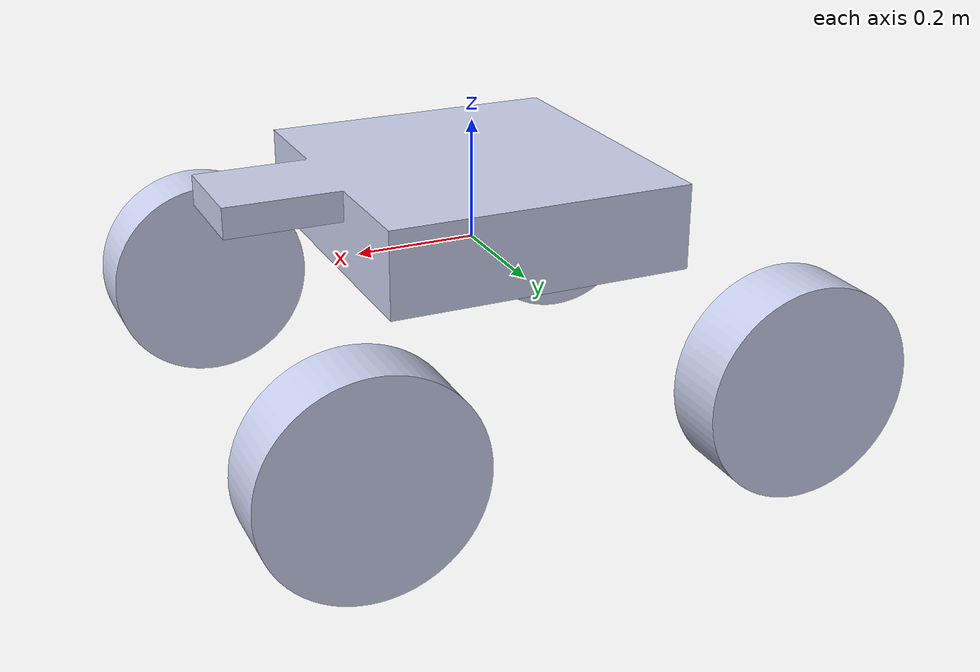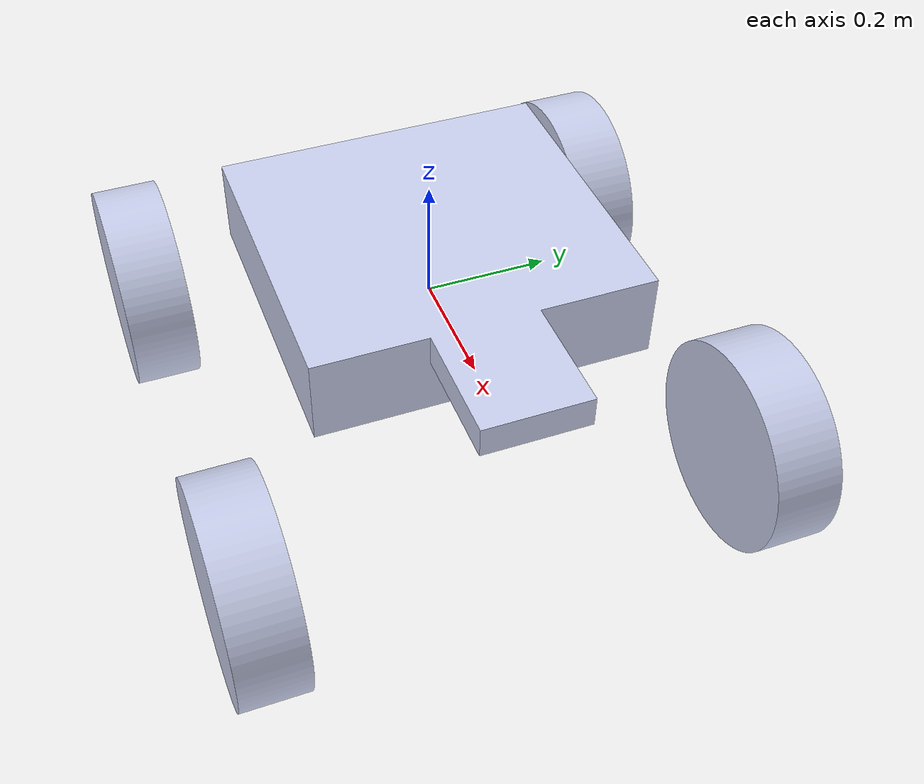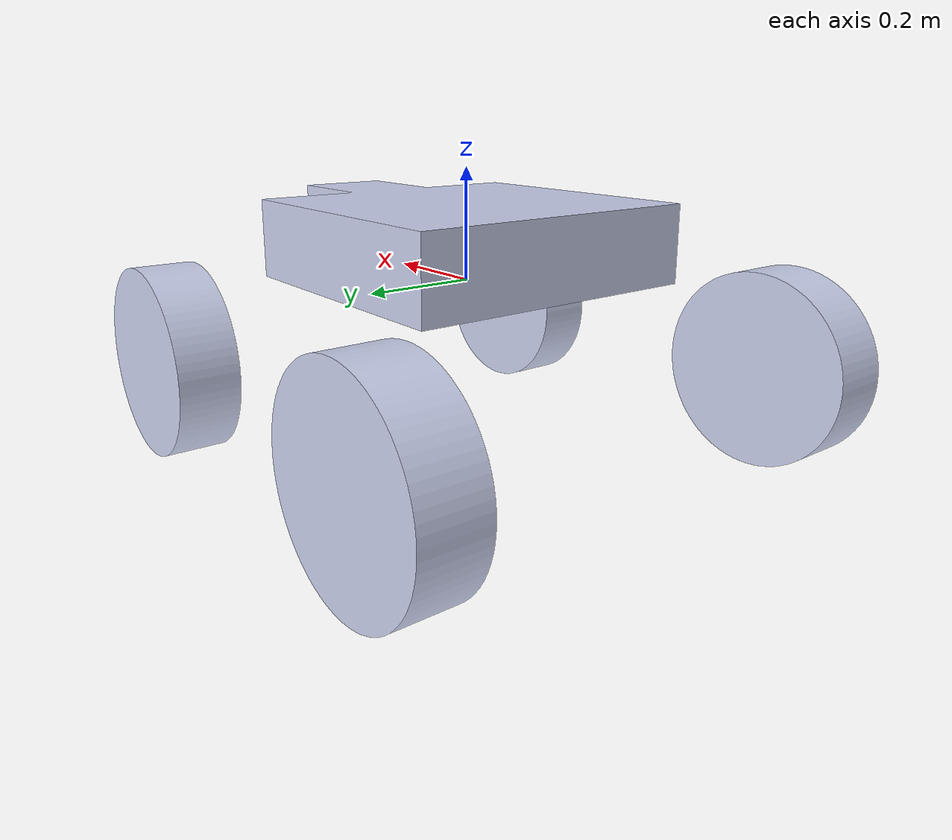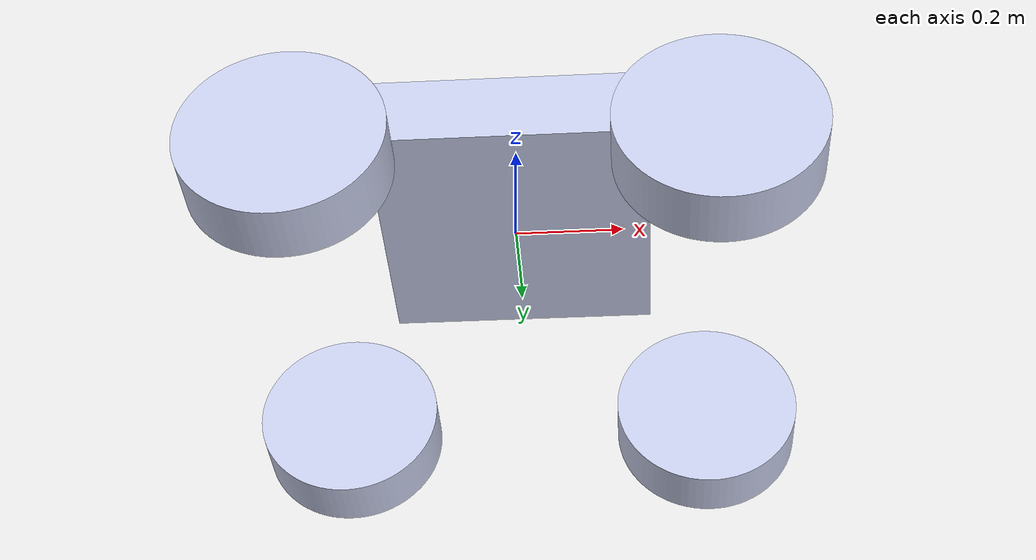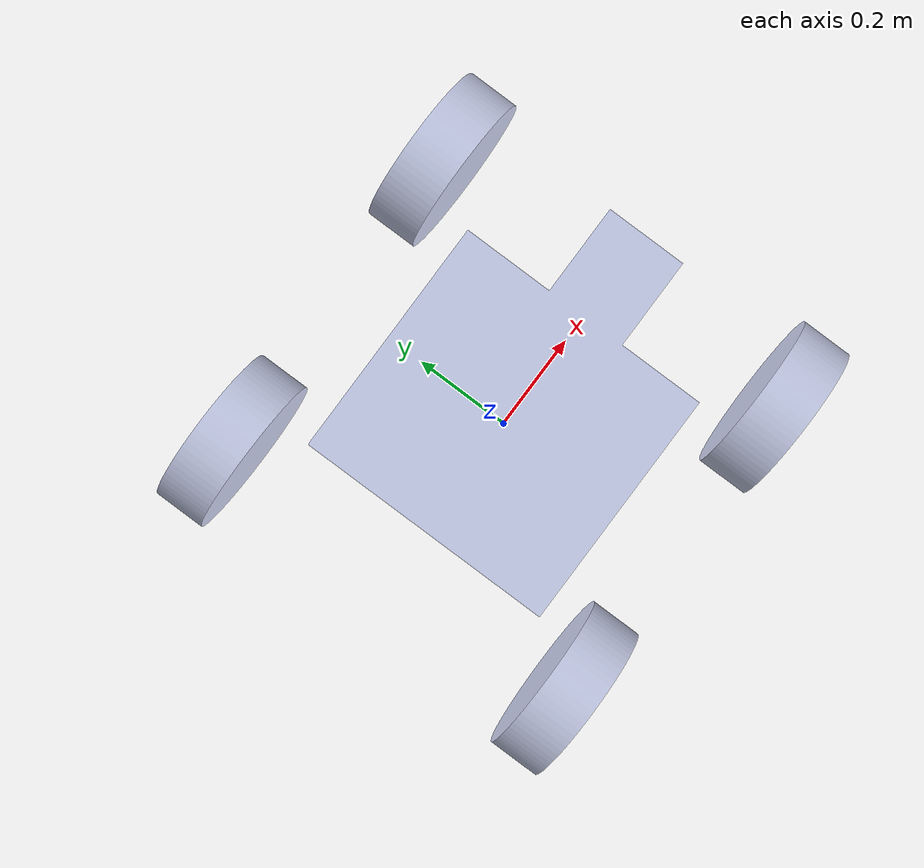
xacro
<?xml version="1.0" encoding="utf-8"?>
<robot
  name="rover_21_description" xmlns:xacro="http://www.ros.org/wiki/xacro">

  <xacro:property name="cameraSize" value="0.05"/>
  <xacro:property name="cameraMass" value="0.1"/>

  <link
    name="base_link">
    <inertial>
      <origin
        xyz="-0.0597176388871317 -2.21514952908342E-09 0.0432014783103323"
        rpy="0 0 0" />
      <mass
        value="7.6451763291456" />
      <inertia
        ixx="0.168439329083486"
        ixy="-1.08629887891622E-05"
        ixz="0.0407415251600241"
        iyy="0.481545696094267"
        iyz="5.75369711790317E-08"
        izz="0.541121238422161" />
    </inertial>
    <visual>
      <origin
        xyz="0 0 0"
        rpy="0 0 -1.57" />
      <geometry>
        <mesh
          filename="package://rover_21_description/meshes/base_link_new.stl"  scale="0.1 0.1 0.1"/>
      </geometry>
      <material
        name="">
        <color
          rgba="0.792156862745098 0.819607843137255 0.933333333333333 1" />
      </material>
    </visual>
    <collision>
      <origin
        xyz="0 0 0"
        rpy="0 0 -1.57" />
      <geometry>
        <mesh
          filename="package://rover_21_description/meshes/base_link_new.stl"  scale="0.1 0.1 0.1"/>
      </geometry>
    </collision>
  </link>
  <link
    name="left_front_link">
    <inertial>
      <origin
        xyz="-0.0755097276903981 0.000138247434987249 -4.79303458726932E-05"
        rpy="0 0 0" />
      <mass
        value="1.15731252096219" />
      <inertia
        ixx="0.0178302511822237"
        ixy="-2.09274363582099E-06"
        ixz="1.4204407926078E-06"
        iyy="0.00968270185063617"
        iyz="1.80036299754407E-06"
        izz="0.00969344166305502" />
    </inertial>
    <visual>
      <origin
        xyz="0 0 0"
        rpy="0 0 0" />
      <geometry>
        <mesh
          filename="package://rover_21_description/meshes/left_front.stl"  scale="0.1 0.1 0.1"/>
      </geometry>
      <material
        name="">
        <color
          rgba="0.792156862745098 0.819607843137255 0.933333333333333 1" />
      </material>
    </visual>
    <collision>
      <origin
        xyz="0 0 0"
        rpy="0 0 0" />
      <geometry>
        <mesh
          filename="package://rover_21_description/meshes/left_front.stl"  scale="0.1 0.1 0.1"/>
      </geometry>
    </collision>
  </link>
  <joint
    name="left_front_joint"
    type="continuous">
    <origin
      xyz="0.353294657130572 0.3625 -0.154224967578181"
      rpy="-2.0786047357804 0 -1.5707963267949" />
    <parent
      link="base_link" />
    <child
      link="left_front_link" />
    <axis
      xyz="-1 0 0" />
  </joint>
  <link
    name="right_front_link">
    <inertial>
      <origin
        xyz="-2.84518155616587E-05 0.00014352757758429 -0.0754466264782706"
        rpy="0 0 0" />
      <mass
        value="1.15731252096219" />
      <inertia
        ixx="0.00969372906416445"
        ixy="2.68465121779082E-07"
        ixz="-1.11897159373537E-06"
        iyy="0.00968241444952688"
        iyz="2.26828802029305E-06"
        izz="0.0178302511822238" />
    </inertial>
    <visual>
      <origin
        xyz="0 0 0"
        rpy="0 0 0" />
      <geometry>
        <mesh
          filename="package://rover_21_description/meshes/right_front.stl"  scale="0.1 0.1 0.1"/>
      </geometry>
      <material
        name="">
        <color
          rgba="0.792156862745098 0.819607843137255 0.933333333333333 1" />
      </material>
    </visual>
    <collision>
      <origin
        xyz="0 0 0"
        rpy="0 0 0" />
      <geometry>
        <mesh
          filename="package://rover_21_description/meshes/right_front.stl"  scale="0.1 0.1 0.1"/>
      </geometry>
    </collision>
  </link>
  <joint
    name="right_front_joint"
    type="continuous">
    <origin
      xyz="0.353351994708173 -0.3625 -0.154125745497893"
      rpy="-1.5707963267949 0.966931818667219 0" />
    <parent
      link="base_link" />
    <child
      link="right_front_link" />
    <axis
      xyz="0 0 1" />
  </joint>
  <link
    name="left_rear_link">
    <inertial>
      <origin
        xyz="-2.8451815541175E-05 0.000143527577594393 0.0755097276903982"
        rpy="0 0 0" />
      <mass
        value="1.15731252096219" />
      <inertia
        ixx="0.00969372906416443"
        ixy="2.6846512179334E-07"
        ixz="-1.11897159373079E-06"
        iyy="0.00968241444952685"
        iyz="2.26828802029616E-06"
        izz="0.0178302511822237" />
    </inertial>
    <visual>
      <origin
        xyz="0 0 0"
        rpy="0 0 0" />
      <geometry>
        <mesh
          filename="package://rover_21_description/meshes/left_behind.stl"  scale="0.1 0.1 0.1"/>
      </geometry>
      <material
        name="">
        <color
          rgba="0.792156862745098 0.819607843137255 0.933333333333333 1" />
      </material>
    </visual>
    <collision>
      <origin
        xyz="0 0 0"
        rpy="0 0 0" />
      <geometry>
        <mesh
          filename="package://rover_21_description/meshes/left_behind.stl"  scale="0.1 0.1 0.1"/>
      </geometry>
    </collision>
  </link>
  <joint
    name="left_rear_joint"
    type="continuous">
    <origin
      xyz="-0.355493804489844 0.3625 -0.150372421028072"
      rpy="1.5707963267949 1.53320191104535 3.14159265358979" />
    <parent
      link="base_link" />
    <child
      link="left_rear_link" />
    <axis
      xyz="0 0 1" />
  </joint>
  <link
    name="right_rear_link">
    <inertial>
      <origin
        xyz="-2.84515837579713E-05 0.000143527620351219 -0.0754466264782706"
        rpy="0 0 0" />
      <mass
        value="1.15731252096219" />
      <inertia
        ixx="0.00969372911382251"
        ixy="2.68439980844609E-07"
        ixz="-1.11897159373792E-06"
        iyy="0.00968241439986873"
        iyz="2.26828802029381E-06"
        izz="0.0178302511822237" />
    </inertial>
    <visual>
      <origin
        xyz="0 0 0"
        rpy="0 0 0" />
      <geometry>
        <mesh
          filename="package://rover_21_description/meshes/right_front.stl"  scale="0.1 0.1 0.1"/>
      </geometry>
      <material
        name="">
        <color
          rgba="0.792156862745098 0.819607843137255 0.933333333333333 1" />
      </material>
    </visual>
    <collision>
      <origin
        xyz="0 0 0"
        rpy="0 0 0" />
      <geometry>
        <mesh
          filename="package://rover_21_description/meshes/right_front.stl" scale="0.1 0.1 0.1"/>
      </geometry>
    </collision>
  </link>
  <joint
    name="right_rear_joint"
    type="continuous">
    <origin
      xyz="-0.353922288632598 -0.3625 -0.150480055091568"
      rpy="-1.5707963267949 0.867399709619945 0" />
    <parent
      link="base_link" />
    <child
      link="right_rear_link" />
    <axis
      xyz="0 0 1" />
  </joint>

  <transmission name="left_front_trans" type="SimpleTransmission">
    <type>transmission_interface/SimpleTransmission</type>
    <actuator name="left_front_motor">
      <mechanicalReduction>1</mechanicalReduction>
    </actuator>
    <joint name="left_front_joint">
      <hardwareInterface>hardware_interface/VelocityJointInterface</hardwareInterface>
    </joint>
  </transmission>

  <transmission name="right_front_trans" type="SimpleTransmission">
    <type>transmission_interface/SimpleTransmission</type>
    <actuator name="right_front_motor">
      <mechanicalReduction>1</mechanicalReduction>
    </actuator>
    <joint name="right_front_joint">
      <hardwareInterface>hardware_interface/VelocityJointInterface</hardwareInterface>
    </joint>
  </transmission>

  <transmission name="left_rear_trans" type="SimpleTransmission">
    <type>transmission_interface/SimpleTransmission</type>
    <actuator name="left_rear_motor">
      <mechanicalReduction>1</mechanicalReduction>
    </actuator>
    <joint name="left_rear_joint">
      <hardwareInterface>hardware_interface/VelocityJointInterface</hardwareInterface>
    </joint>
  </transmission>

  <transmission name="right_rear_trans" type="SimpleTransmission">
    <type>transmission_interface/SimpleTransmission</type>
    <actuator name="right_rear_motor">
      <mechanicalReduction>1</mechanicalReduction>
    </actuator>
    <joint name="right_rear_joint">
      <hardwareInterface>hardware_interface/VelocityJointInterface</hardwareInterface>
    </joint>
  </transmission>

</robot>
